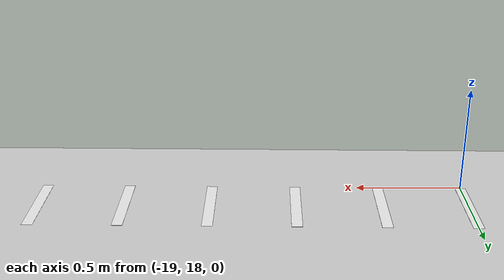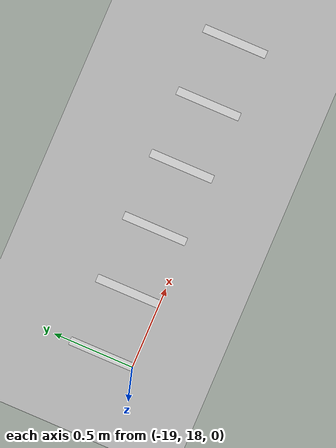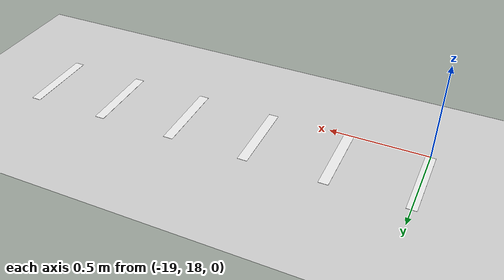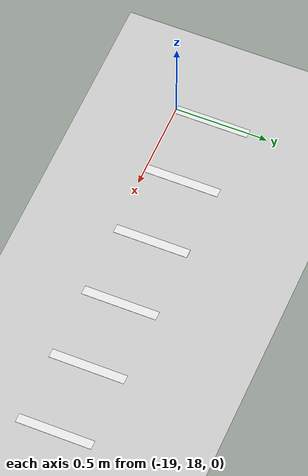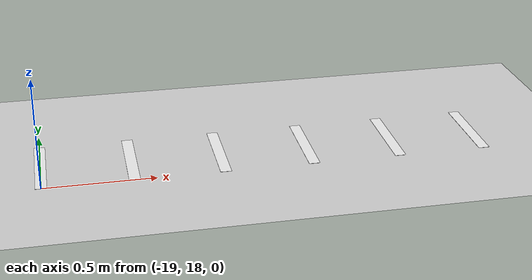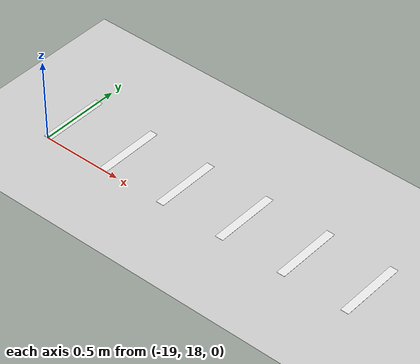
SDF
<sdf version="1.6">
 <world name="default">
  <model name="ground_plane">
   <static>1</static>
   <link name="link">
    <collision name="collision">
     <geometry><plane><normal>0 0 1</normal><size>100 100</size></plane></geometry>
     <surface><friction><ode><mu>100</mu><mu2>50</mu2></ode></friction></surface>
    </collision>
    <visual name="visual">
     <cast_shadows>0</cast_shadows>
     <geometry><plane><normal>0 0 1</normal><size>100 100</size></plane></geometry>
     <material>
      <script><uri>file://media/materials/scripts/gazebo.material</uri><name>Gazebo/Grey</name></script>
     </material>
    </visual>
   </link>
  </model>
  <model name="zebra_crossing_40cmx200cm_6">
   <link name="link_2">
    <inertial>
     <mass>1</mass>
     <inertia>
      <ixx>0.166667</ixx>
      <ixy>0</ixy>
      <ixz>0</ixz>
      <iyy>0.166667</iyy>
      <iyz>0</iyz>
      <izz>0.166667</izz>
     </inertia>
    </inertial>
    <visual name="ModelPreview_5::link_2::visual_1">
     <pose>-0.2 0 0 0 -0 0</pose>
     <geometry><box><size>0.05 0.4 0.001</size></box></geometry>
     <material>
      <lighting>1</lighting>
      <script><uri>file://media/materials/scripts/gazebo.material</uri><name>Gazebo/White</name></script>
     </material>
    </visual>
    <visual name="ModelPreview_5::link_2::visual_3">
     <pose>-0.6 0 0 0 -0 0</pose>
     <geometry><box><size>0.05 0.4 0.001</size></box></geometry>
     <material>
      <lighting>1</lighting>
      <script><uri>file://media/materials/scripts/gazebo.material</uri><name>Gazebo/White</name></script>
     </material>
    </visual>
    <visual name="ModelPreview_5::link_2::visual_4">
     <pose>1 0 0 0 -0 0</pose>
     <geometry><box><size>0.05 0.4 0.001</size></box></geometry>
     <material>
      <lighting>1</lighting>
      <script><uri>file://media/materials/scripts/gazebo.material</uri><name>Gazebo/White</name></script>
     </material>
    </visual>
    <visual name="visual">
     <pose>0.2 0 0 0 -0 0</pose>
     <geometry><box><size>0.05 0.4 0.001</size></box></geometry>
     <material>
      <lighting>1</lighting>
      <script><uri>file://media/materials/scripts/gazebo.material</uri><name>Gazebo/White</name></script>
     </material>
    </visual>
    <visual name="ModelPreview_5::link_2::visual_5">
     <pose>-1 0 0 0 -0 0</pose>
     <geometry><box><size>0.05 0.4 0.001</size></box></geometry>
     <material>
      <lighting>1</lighting>
      <script><uri>file://media/materials/scripts/gazebo.material</uri><name>Gazebo/White</name></script>
     </material>
    </visual>
    <visual name="ModelPreview_5::link_2::visual_2">
     <pose>0.6 0 0 0 -0 0</pose>
     <geometry><box><size>0.05 0.4 0.001</size></box></geometry>
     <material>
      <lighting>1</lighting>
      <script><uri>file://media/materials/scripts/gazebo.material</uri><name>Gazebo/White</name></script>
     </material>
    </visual>
    <collision name="collision_5">
     <pose>-1 0 0 0 -0 0</pose>
     <geometry><box><size>0.05 0.4 1e-05</size></box></geometry>
     <surface>
      <friction>
       <ode><mu>1</mu><mu2>1</mu2><fdir1>0 0 0</fdir1><slip1>0</slip1><slip2>0</slip2></ode>
       <torsional>
        <coefficient>1</coefficient>
        <patch_radius>0</patch_radius>
        <surface_radius>0</surface_radius>
        <use_patch_radius>1</use_patch_radius>
        <ode><slip>0</slip></ode>
       </torsional>
      </friction>
      <bounce><restitution_coefficient>0</restitution_coefficient><threshold>1e+06</threshold></bounce>
      <contact>
       <collide_without_contact>0</collide_without_contact>
       <collide_without_contact_bitmask>1</collide_without_contact_bitmask>
       <collide_bitmask>1</collide_bitmask>
       <ode>
        <soft_cfm>0</soft_cfm>
        <soft_erp>0.2</soft_erp>
        <kp>1e+13</kp>
        <kd>1</kd>
        <max_vel>0.01</max_vel>
        <min_depth>0</min_depth>
       </ode>
       <bullet>
        <split_impulse>1</split_impulse>
        <split_impulse_penetration_threshold>-0.01</split_impulse_penetration_threshold>
        <soft_cfm>0</soft_cfm>
        <soft_erp>0.2</soft_erp>
        <kp>1e+13</kp>
        <kd>1</kd>
       </bullet>
      </contact>
     </surface>
    </collision>
    <collision name="collision">
     <pose>0.2 0 0 0 -0 0</pose>
     <geometry><box><size>0.05 0.4 1e-05</size></box></geometry>
     <surface>
      <friction>
       <ode><mu>1</mu><mu2>1</mu2><fdir1>0 0 0</fdir1><slip1>0</slip1><slip2>0</slip2></ode>
       <torsional>
        <coefficient>1</coefficient>
        <patch_radius>0</patch_radius>
        <surface_radius>0</surface_radius>
        <use_patch_radius>1</use_patch_radius>
        <ode><slip>0</slip></ode>
       </torsional>
      </friction>
      <bounce><restitution_coefficient>0</restitution_coefficient><threshold>1e+06</threshold></bounce>
      <contact>
       <collide_without_contact>0</collide_without_contact>
       <collide_without_contact_bitmask>1</collide_without_contact_bitmask>
       <collide_bitmask>1</collide_bitmask>
       <ode>
        <soft_cfm>0</soft_cfm>
        <soft_erp>0.2</soft_erp>
        <kp>1e+13</kp>
        <kd>1</kd>
        <max_vel>0.01</max_vel>
        <min_depth>0</min_depth>
       </ode>
       <bullet>
        <split_impulse>1</split_impulse>
        <split_impulse_penetration_threshold>-0.01</split_impulse_penetration_threshold>
        <soft_cfm>0</soft_cfm>
        <soft_erp>0.2</soft_erp>
        <kp>1e+13</kp>
        <kd>1</kd>
       </bullet>
      </contact>
     </surface>
    </collision>
    <collision name="collision_3">
     <pose>-0.6 0 0 0 -0 0</pose>
     <geometry><box><size>0.05 0.4 1e-05</size></box></geometry>
     <surface>
      <friction>
       <ode><mu>1</mu><mu2>1</mu2><fdir1>0 0 0</fdir1><slip1>0</slip1><slip2>0</slip2></ode>
       <torsional>
        <coefficient>1</coefficient>
        <patch_radius>0</patch_radius>
        <surface_radius>0</surface_radius>
        <use_patch_radius>1</use_patch_radius>
        <ode><slip>0</slip></ode>
       </torsional>
      </friction>
      <bounce><restitution_coefficient>0</restitution_coefficient><threshold>1e+06</threshold></bounce>
      <contact>
       <collide_without_contact>0</collide_without_contact>
       <collide_without_contact_bitmask>1</collide_without_contact_bitmask>
       <collide_bitmask>1</collide_bitmask>
       <ode>
        <soft_cfm>0</soft_cfm>
        <soft_erp>0.2</soft_erp>
        <kp>1e+13</kp>
        <kd>1</kd>
        <max_vel>0.01</max_vel>
        <min_depth>0</min_depth>
       </ode>
       <bullet>
        <split_impulse>1</split_impulse>
        <split_impulse_penetration_threshold>-0.01</split_impulse_penetration_threshold>
        <soft_cfm>0</soft_cfm>
        <soft_erp>0.2</soft_erp>
        <kp>1e+13</kp>
        <kd>1</kd>
       </bullet>
      </contact>
     </surface>
    </collision>
    <collision name="collision_4">
     <pose>1 0 0 0 -0 0</pose>
     <geometry><box><size>0.05 0.4 1e-05</size></box></geometry>
     <surface>
      <friction>
       <ode><mu>1</mu><mu2>1</mu2><fdir1>0 0 0</fdir1><slip1>0</slip1><slip2>0</slip2></ode>
       <torsional>
        <coefficient>1</coefficient>
        <patch_radius>0</patch_radius>
        <surface_radius>0</surface_radius>
        <use_patch_radius>1</use_patch_radius>
        <ode><slip>0</slip></ode>
       </torsional>
      </friction>
      <bounce><restitution_coefficient>0</restitution_coefficient><threshold>1e+06</threshold></bounce>
      <contact>
       <collide_without_contact>0</collide_without_contact>
       <collide_without_contact_bitmask>1</collide_without_contact_bitmask>
       <collide_bitmask>1</collide_bitmask>
       <ode>
        <soft_cfm>0</soft_cfm>
        <soft_erp>0.2</soft_erp>
        <kp>1e+13</kp>
        <kd>1</kd>
        <max_vel>0.01</max_vel>
        <min_depth>0</min_depth>
       </ode>
       <bullet>
        <split_impulse>1</split_impulse>
        <split_impulse_penetration_threshold>-0.01</split_impulse_penetration_threshold>
        <soft_cfm>0</soft_cfm>
        <soft_erp>0.2</soft_erp>
        <kp>1e+13</kp>
        <kd>1</kd>
       </bullet>
      </contact>
     </surface>
    </collision>
    <collision name="collision_2">
     <pose>0.6 0 0 0 -0 0</pose>
     <geometry><box><size>0.05 0.4 1e-05</size></box></geometry>
     <surface>
      <friction>
       <ode><mu>1</mu><mu2>1</mu2><fdir1>0 0 0</fdir1><slip1>0</slip1><slip2>0</slip2></ode>
       <torsional>
        <coefficient>1</coefficient>
        <patch_radius>0</patch_radius>
        <surface_radius>0</surface_radius>
        <use_patch_radius>1</use_patch_radius>
        <ode><slip>0</slip></ode>
       </torsional>
      </friction>
      <bounce><restitution_coefficient>0</restitution_coefficient><threshold>1e+06</threshold></bounce>
      <contact>
       <collide_without_contact>0</collide_without_contact>
       <collide_without_contact_bitmask>1</collide_without_contact_bitmask>
       <collide_bitmask>1</collide_bitmask>
       <ode>
        <soft_cfm>0</soft_cfm>
        <soft_erp>0.2</soft_erp>
        <kp>1e+13</kp>
        <kd>1</kd>
        <max_vel>0.01</max_vel>
        <min_depth>0</min_depth>
       </ode>
       <bullet>
        <split_impulse>1</split_impulse>
        <split_impulse_penetration_threshold>-0.01</split_impulse_penetration_threshold>
        <soft_cfm>0</soft_cfm>
        <soft_erp>0.2</soft_erp>
        <kp>1e+13</kp>
        <kd>1</kd>
       </bullet>
      </contact>
     </surface>
    </collision>
    <collision name="collision_1">
     <pose>-0.2 0 0 0 -0 0</pose>
     <geometry><box><size>0.05 0.4 1e-05</size></box></geometry>
     <surface>
      <friction>
       <ode><mu>1</mu><mu2>1</mu2><fdir1>0 0 0</fdir1><slip1>0</slip1><slip2>0</slip2></ode>
       <torsional>
        <coefficient>1</coefficient>
        <patch_radius>0</patch_radius>
        <surface_radius>0</surface_radius>
        <use_patch_radius>1</use_patch_radius>
        <ode><slip>0</slip></ode>
       </torsional>
      </friction>
      <bounce><restitution_coefficient>0</restitution_coefficient><threshold>1e+06</threshold></bounce>
      <contact>
       <collide_without_contact>0</collide_without_contact>
       <collide_without_contact_bitmask>1</collide_without_contact_bitmask>
       <collide_bitmask>1</collide_bitmask>
       <ode>
        <soft_cfm>0</soft_cfm>
        <soft_erp>0.2</soft_erp>
        <kp>1e+13</kp>
        <kd>1</kd>
        <max_vel>0.01</max_vel>
        <min_depth>0</min_depth>
       </ode>
       <bullet>
        <split_impulse>1</split_impulse>
        <split_impulse_penetration_threshold>-0.01</split_impulse_penetration_threshold>
        <soft_cfm>0</soft_cfm>
        <soft_erp>0.2</soft_erp>
        <kp>1e+13</kp>
        <kd>1</kd>
       </bullet>
      </contact>
     </surface>
    </collision>
   </link>
   <static>1</static>
   <pose>-18 18.2 0 0 -0 0</pose>
  </model>
 </world>
</sdf>
